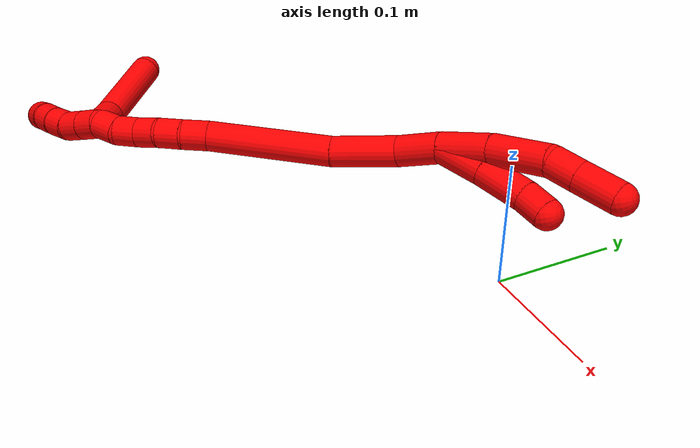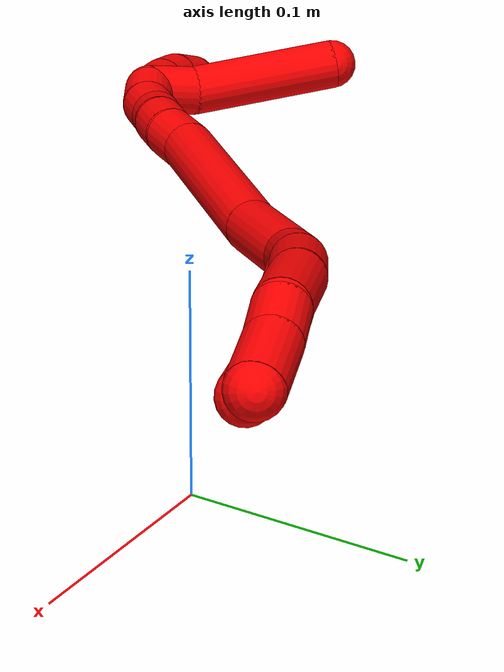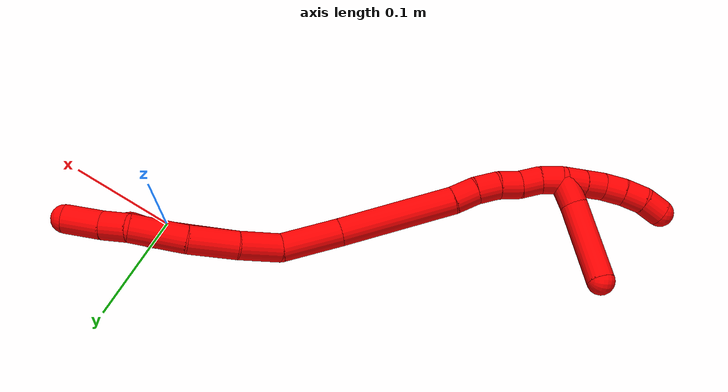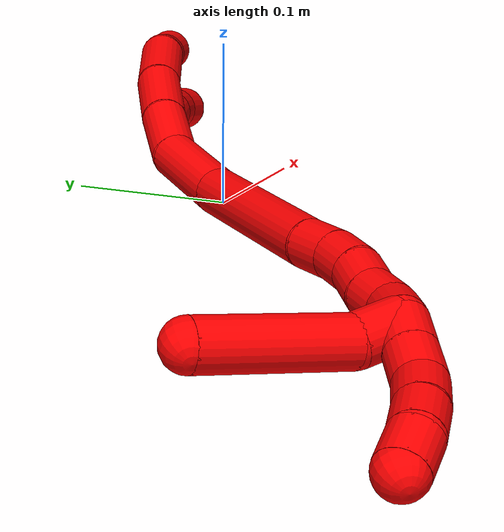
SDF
<sdf version="1.7">
 <world name="default">
  <model name="2">
   <static>0</static>
   <link name="2">
    <collision name="collision-cylinder-e_1_2_8">
     <pose>0.00101 0.002368 -0.021593 -3.03238 0.046485 -0.804257</pose>
     <geometry><cylinder><radius>0.0125</radius><length>0.043491</length></cylinder></geometry>
     <surface>
      <friction><ode><mu>1.16</mu><mu2>1.16</mu2><slip1>0</slip1><slip2>0</slip2></ode></friction>
      <contact><ode><kp>1e+06</kp><kd>1</kd><max_vel>0</max_vel><min_depth>0.001</min_depth></ode></contact>
     </surface>
    </collision>
    <visual name="visual-cylinder-e_1_2_8">
     <pose>0.00101 0.002368 -0.021593 -3.03238 0.046485 -0.804257</pose>
     <geometry><cylinder><radius>0.0125</radius><length>0.043491</length></cylinder></geometry>
     <material><ambient>1 0 0 1</ambient></material>
    </visual>
    <collision name="collision-cylinder-e_2_8_9">
     <pose>0.004024 0.010813 -0.066882 -2.89053 0.081685 -0.626334</pose>
     <geometry><cylinder><radius>0.0125</radius><length>0.04909</length></cylinder></geometry>
     <surface>
      <friction><ode><mu>1.16</mu><mu2>1.16</mu2><slip1>0</slip1><slip2>0</slip2></ode></friction>
      <contact><ode><kp>1e+06</kp><kd>1</kd><max_vel>0</max_vel><min_depth>0.001</min_depth></ode></contact>
     </surface>
    </collision>
    <visual name="visual-cylinder-e_2_8_9">
     <pose>0.004024 0.010813 -0.066882 -2.89053 0.081685 -0.626334</pose>
     <geometry><cylinder><radius>0.0125</radius><length>0.04909</length></cylinder></geometry>
     <material><ambient>1 0 0 1</ambient></material>
    </visual>
    <collision name="collision-cylinder-e_3_9_10">
     <pose>0.010379 0.0213 -0.100523 -2.72425 0.380612 -1.47633</pose>
     <geometry><cylinder><radius>0.0125</radius><length>0.023435</length></cylinder></geometry>
     <surface>
      <friction><ode><mu>1.16</mu><mu2>1.16</mu2><slip1>0</slip1><slip2>0</slip2></ode></friction>
      <contact><ode><kp>1e+06</kp><kd>1</kd><max_vel>0</max_vel><min_depth>0.001</min_depth></ode></contact>
     </surface>
    </collision>
    <visual name="visual-cylinder-e_3_9_10">
     <pose>0.010379 0.0213 -0.100523 -2.72425 0.380612 -1.47633</pose>
     <geometry><cylinder><radius>0.0125</radius><length>0.023435</length></cylinder></geometry>
     <material><ambient>1 0 0 1</ambient></material>
    </visual>
    <collision name="collision-cylinder-e_4_10_6">
     <pose>0.019878 0.032629 -0.12511 -2.70012 0.307663 -1.20932</pose>
     <geometry><cylinder><radius>0.0125</radius><length>0.033983</length></cylinder></geometry>
     <surface>
      <friction><ode><mu>1.16</mu><mu2>1.16</mu2><slip1>0</slip1><slip2>0</slip2></ode></friction>
      <contact><ode><kp>1e+06</kp><kd>1</kd><max_vel>0</max_vel><min_depth>0.001</min_depth></ode></contact>
     </surface>
    </collision>
    <visual name="visual-cylinder-e_4_10_6">
     <pose>0.019878 0.032629 -0.12511 -2.70012 0.307663 -1.20932</pose>
     <geometry><cylinder><radius>0.0125</radius><length>0.033983</length></cylinder></geometry>
     <material><ambient>1 0 0 1</ambient></material>
    </visual>
    <collision name="collision-cylinder-e_1_2_11">
     <pose>0.006408 0.007546 -0.01706 -2.72516 0.330898 -1.33761</pose>
     <geometry><cylinder><radius>0.0125</radius><length>0.03945</length></cylinder></geometry>
     <surface>
      <friction><ode><mu>1.16</mu><mu2>1.16</mu2><slip1>0</slip1><slip2>0</slip2></ode></friction>
      <contact><ode><kp>1e+06</kp><kd>1</kd><max_vel>0</max_vel><min_depth>0.001</min_depth></ode></contact>
     </surface>
    </collision>
    <visual name="visual-cylinder-e_1_2_11">
     <pose>0.006408 0.007546 -0.01706 -2.72516 0.330898 -1.33761</pose>
     <geometry><cylinder><radius>0.0125</radius><length>0.03945</length></cylinder></geometry>
     <material><ambient>1 0 0 1</ambient></material>
    </visual>
    <collision name="collision-cylinder-e_2_11_12">
     <pose>0.019704 0.023106 -0.050192 -2.67899 0.366207 -1.33262</pose>
     <geometry><cylinder><radius>0.0125</radius><length>0.038469</length></cylinder></geometry>
     <surface>
      <friction><ode><mu>1.16</mu><mu2>1.16</mu2><slip1>0</slip1><slip2>0</slip2></ode></friction>
      <contact><ode><kp>1e+06</kp><kd>1</kd><max_vel>0</max_vel><min_depth>0.001</min_depth></ode></contact>
     </surface>
    </collision>
    <visual name="visual-cylinder-e_2_11_12">
     <pose>0.019704 0.023106 -0.050192 -2.67899 0.366207 -1.33262</pose>
     <geometry><cylinder><radius>0.0125</radius><length>0.038469</length></cylinder></geometry>
     <material><ambient>1 0 0 1</ambient></material>
    </visual>
    <collision name="collision-cylinder-e_3_12_5">
     <pose>0.029689 0.037354 -0.074834 -2.51283 0.284378 -0.829435</pose>
     <geometry><cylinder><radius>0.0125</radius><length>0.022082</length></cylinder></geometry>
     <surface>
      <friction><ode><mu>1.16</mu><mu2>1.16</mu2><slip1>0</slip1><slip2>0</slip2></ode></friction>
      <contact><ode><kp>1e+06</kp><kd>1</kd><max_vel>0</max_vel><min_depth>0.001</min_depth></ode></contact>
     </surface>
    </collision>
    <visual name="visual-cylinder-e_3_12_5">
     <pose>0.029689 0.037354 -0.074834 -2.51283 0.284378 -0.829435</pose>
     <geometry><cylinder><radius>0.0125</radius><length>0.022082</length></cylinder></geometry>
     <material><ambient>1 0 0 1</ambient></material>
    </visual>
    <collision name="collision-cylinder-e_1_2_13">
     <pose>-0.000127 1.2e-05 0.018966 -0.000635 -0.006717 2e-06</pose>
     <geometry><cylinder><radius>0.0125</radius><length>0.037932</length></cylinder></geometry>
     <surface>
      <friction><ode><mu>1.16</mu><mu2>1.16</mu2><slip1>0</slip1><slip2>0</slip2></ode></friction>
      <contact><ode><kp>1e+06</kp><kd>1</kd><max_vel>0</max_vel><min_depth>0.001</min_depth></ode></contact>
     </surface>
    </collision>
    <visual name="visual-cylinder-e_1_2_13">
     <pose>-0.000127 1.2e-05 0.018966 -0.000635 -0.006717 2e-06</pose>
     <geometry><cylinder><radius>0.0125</radius><length>0.037932</length></cylinder></geometry>
     <material><ambient>1 0 0 1</ambient></material>
    </visual>
    <collision name="collision-cylinder-e_2_13_14">
     <pose>-0.007989 0.004516 0.063611 -0.173183 -0.288407 0.02521</pose>
     <geometry><cylinder><radius>0.0125</radius><length>0.054385</length></cylinder></geometry>
     <surface>
      <friction><ode><mu>1.16</mu><mu2>1.16</mu2><slip1>0</slip1><slip2>0</slip2></ode></friction>
      <contact><ode><kp>1e+06</kp><kd>1</kd><max_vel>0</max_vel><min_depth>0.001</min_depth></ode></contact>
     </surface>
    </collision>
    <visual name="visual-cylinder-e_2_13_14">
     <pose>-0.007989 0.004516 0.063611 -0.173183 -0.288407 0.02521</pose>
     <geometry><cylinder><radius>0.0125</radius><length>0.054385</length></cylinder></geometry>
     <material><ambient>1 0 0 1</ambient></material>
    </visual>
    <collision name="collision-cylinder-e_3_14_15">
     <pose>-0.036376 0.013899 0.136831 -0.102512 -0.407899 0.02122</pose>
     <geometry><cylinder><radius>0.0125</radius><length>0.104126</length></cylinder></geometry>
     <surface>
      <friction><ode><mu>1.16</mu><mu2>1.16</mu2><slip1>0</slip1><slip2>0</slip2></ode></friction>
      <contact><ode><kp>1e+06</kp><kd>1</kd><max_vel>0</max_vel><min_depth>0.001</min_depth></ode></contact>
     </surface>
    </collision>
    <visual name="visual-cylinder-e_3_14_15">
     <pose>-0.036376 0.013899 0.136831 -0.102512 -0.407899 0.02122</pose>
     <geometry><cylinder><radius>0.0125</radius><length>0.104126</length></cylinder></geometry>
     <material><ambient>1 0 0 1</ambient></material>
    </visual>
    <collision name="collision-cylinder-e_4_15_16">
     <pose>-0.061841 0.021254 0.193999 -0.250612 -0.451029 0.057781</pose>
     <geometry><cylinder><radius>0.0125</radius><length>0.022084</length></cylinder></geometry>
     <surface>
      <friction><ode><mu>1.16</mu><mu2>1.16</mu2><slip1>0</slip1><slip2>0</slip2></ode></friction>
      <contact><ode><kp>1e+06</kp><kd>1</kd><max_vel>0</max_vel><min_depth>0.001</min_depth></ode></contact>
     </surface>
    </collision>
    <visual name="visual-cylinder-e_4_15_16">
     <pose>-0.061841 0.021254 0.193999 -0.250612 -0.451029 0.057781</pose>
     <geometry><cylinder><radius>0.0125</radius><length>0.022084</length></cylinder></geometry>
     <material><ambient>1 0 0 1</ambient></material>
    </visual>
    <collision name="collision-cylinder-e_5_16_17">
     <pose>-0.070161 0.024776 0.21353 -0.106291 -0.338514 0.018181</pose>
     <geometry><cylinder><radius>0.0125</radius><length>0.021117</length></cylinder></geometry>
     <surface>
      <friction><ode><mu>1.16</mu><mu2>1.16</mu2><slip1>0</slip1><slip2>0</slip2></ode></friction>
      <contact><ode><kp>1e+06</kp><kd>1</kd><max_vel>0</max_vel><min_depth>0.001</min_depth></ode></contact>
     </surface>
    </collision>
    <visual name="visual-cylinder-e_5_16_17">
     <pose>-0.070161 0.024776 0.21353 -0.106291 -0.338514 0.018181</pose>
     <geometry><cylinder><radius>0.0125</radius><length>0.021117</length></cylinder></geometry>
     <material><ambient>1 0 0 1</ambient></material>
    </visual>
    <collision name="collision-cylinder-e_6_17_18">
     <pose>-0.075172 0.025825 0.23345 0.000675 -0.149146 -5e-05</pose>
     <geometry><cylinder><radius>0.0125</radius><length>0.020259</length></cylinder></geometry>
     <surface>
      <friction><ode><mu>1.16</mu><mu2>1.16</mu2><slip1>0</slip1><slip2>0</slip2></ode></friction>
      <contact><ode><kp>1e+06</kp><kd>1</kd><max_vel>0</max_vel><min_depth>0.001</min_depth></ode></contact>
     </surface>
    </collision>
    <visual name="visual-cylinder-e_6_17_18">
     <pose>-0.075172 0.025825 0.23345 0.000675 -0.149146 -5e-05</pose>
     <geometry><cylinder><radius>0.0125</radius><length>0.020259</length></cylinder></geometry>
     <material><ambient>1 0 0 1</ambient></material>
    </visual>
    <collision name="collision-cylinder-e_7_18_19">
     <pose>-0.080008 0.026695 0.25289 -0.092751 -0.338342 0.015853</pose>
     <geometry><cylinder><radius>0.0125</radius><length>0.020064</length></cylinder></geometry>
     <surface>
      <friction><ode><mu>1.16</mu><mu2>1.16</mu2><slip1>0</slip1><slip2>0</slip2></ode></friction>
      <contact><ode><kp>1e+06</kp><kd>1</kd><max_vel>0</max_vel><min_depth>0.001</min_depth></ode></contact>
     </surface>
    </collision>
    <visual name="visual-cylinder-e_7_18_19">
     <pose>-0.080008 0.026695 0.25289 -0.092751 -0.338342 0.015853</pose>
     <geometry><cylinder><radius>0.0125</radius><length>0.020064</length></cylinder></geometry>
     <material><ambient>1 0 0 1</ambient></material>
    </visual>
    <collision name="collision-cylinder-e_8_19_1">
     <pose>-0.08655 0.025398 0.271547 0.231155 -0.326465 -0.038237</pose>
     <geometry><cylinder><radius>0.0125</radius><length>0.020032</length></cylinder></geometry>
     <surface>
      <friction><ode><mu>1.16</mu><mu2>1.16</mu2><slip1>0</slip1><slip2>0</slip2></ode></friction>
      <contact><ode><kp>1e+06</kp><kd>1</kd><max_vel>0</max_vel><min_depth>0.001</min_depth></ode></contact>
     </surface>
    </collision>
    <visual name="visual-cylinder-e_8_19_1">
     <pose>-0.08655 0.025398 0.271547 0.231155 -0.326465 -0.038237</pose>
     <geometry><cylinder><radius>0.0125</radius><length>0.020032</length></cylinder></geometry>
     <material><ambient>1 0 0 1</ambient></material>
    </visual>
    <collision name="collision-cylinder-e_1_1_20">
     <pose>-0.089502 0.022633 0.290761 0.059261 0.025934 0.000769</pose>
     <geometry><cylinder><radius>0.0125</radius><length>0.02</length></cylinder></geometry>
     <surface>
      <friction><ode><mu>1.16</mu><mu2>1.16</mu2><slip1>0</slip1><slip2>0</slip2></ode></friction>
      <contact><ode><kp>1e+06</kp><kd>1</kd><max_vel>0</max_vel><min_depth>0.001</min_depth></ode></contact>
     </surface>
    </collision>
    <visual name="visual-cylinder-e_1_1_20">
     <pose>-0.089502 0.022633 0.290761 0.059261 0.025934 0.000769</pose>
     <geometry><cylinder><radius>0.0125</radius><length>0.02</length></cylinder></geometry>
     <material><ambient>1 0 0 1</ambient></material>
    </visual>
    <collision name="collision-cylinder-e_2_20_21">
     <pose>-0.089088 0.021424 0.31072 0.061691 0.015472 0.000477</pose>
     <geometry><cylinder><radius>0.0125</radius><length>0.02</length></cylinder></geometry>
     <surface>
      <friction><ode><mu>1.16</mu><mu2>1.16</mu2><slip1>0</slip1><slip2>0</slip2></ode></friction>
      <contact><ode><kp>1e+06</kp><kd>1</kd><max_vel>0</max_vel><min_depth>0.001</min_depth></ode></contact>
     </surface>
    </collision>
    <visual name="visual-cylinder-e_2_20_21">
     <pose>-0.089088 0.021424 0.31072 0.061691 0.015472 0.000477</pose>
     <geometry><cylinder><radius>0.0125</radius><length>0.02</length></cylinder></geometry>
     <material><ambient>1 0 0 1</ambient></material>
    </visual>
    <collision name="collision-cylinder-e_3_21_22">
     <pose>-0.089709 0.017555 0.330124 0.332384 -0.077578 -0.013019</pose>
     <geometry><cylinder><radius>0.0125</radius><length>0.02</length></cylinder></geometry>
     <surface>
      <friction><ode><mu>1.16</mu><mu2>1.16</mu2><slip1>0</slip1><slip2>0</slip2></ode></friction>
      <contact><ode><kp>1e+06</kp><kd>1</kd><max_vel>0</max_vel><min_depth>0.001</min_depth></ode></contact>
     </surface>
    </collision>
    <visual name="visual-cylinder-e_3_21_22">
     <pose>-0.089709 0.017555 0.330124 0.332384 -0.077578 -0.013019</pose>
     <geometry><cylinder><radius>0.0125</radius><length>0.02</length></cylinder></geometry>
     <material><ambient>1 0 0 1</ambient></material>
    </visual>
    <collision name="collision-cylinder-e_4_22_23">
     <pose>-0.090283 0.010263 0.348694 0.415794 0.020065 0.004233</pose>
     <geometry><cylinder><radius>0.0125</radius><length>0.02</length></cylinder></geometry>
     <surface>
      <friction><ode><mu>1.16</mu><mu2>1.16</mu2><slip1>0</slip1><slip2>0</slip2></ode></friction>
      <contact><ode><kp>1e+06</kp><kd>1</kd><max_vel>0</max_vel><min_depth>0.001</min_depth></ode></contact>
     </surface>
    </collision>
    <visual name="visual-cylinder-e_4_22_23">
     <pose>-0.090283 0.010263 0.348694 0.415794 0.020065 0.004233</pose>
     <geometry><cylinder><radius>0.0125</radius><length>0.02</length></cylinder></geometry>
     <material><ambient>1 0 0 1</ambient></material>
    </visual>
    <collision name="collision-cylinder-e_5_23_4">
     <pose>-0.087504 0.00175 0.366403 0.481559 0.260805 0.064382</pose>
     <geometry><cylinder><radius>0.0125</radius><length>0.02</length></cylinder></geometry>
     <surface>
      <friction><ode><mu>1.16</mu><mu2>1.16</mu2><slip1>0</slip1><slip2>0</slip2></ode></friction>
      <contact><ode><kp>1e+06</kp><kd>1</kd><max_vel>0</max_vel><min_depth>0.001</min_depth></ode></contact>
     </surface>
    </collision>
    <visual name="visual-cylinder-e_5_23_4">
     <pose>-0.087504 0.00175 0.366403 0.481559 0.260805 0.064382</pose>
     <geometry><cylinder><radius>0.0125</radius><length>0.02</length></cylinder></geometry>
     <material><ambient>1 0 0 1</ambient></material>
    </visual>
    <collision name="collision-cylinder-e_1_1_24">
     <pose>-0.084822 0.012834 0.285329 1.15831 0.410718 0.270768</pose>
     <geometry><cylinder><radius>0.0125</radius><length>0.024742</length></cylinder></geometry>
     <surface>
      <friction><ode><mu>1.16</mu><mu2>1.16</mu2><slip1>0</slip1><slip2>0</slip2></ode></friction>
      <contact><ode><kp>1e+06</kp><kd>1</kd><max_vel>0</max_vel><min_depth>0.001</min_depth></ode></contact>
     </surface>
    </collision>
    <visual name="visual-cylinder-e_1_1_24">
     <pose>-0.084822 0.012834 0.285329 1.15831 0.410718 0.270768</pose>
     <geometry><cylinder><radius>0.0125</radius><length>0.024742</length></cylinder></geometry>
     <material><ambient>1 0 0 1</ambient></material>
    </visual>
    <collision name="collision-cylinder-e_2_24_3">
     <pose>-0.071575 -0.033886 0.295083 1.42843 0.222615 0.19318</pose>
     <geometry><cylinder><radius>0.0125</radius><length>0.075258</length></cylinder></geometry>
     <surface>
      <friction><ode><mu>1.16</mu><mu2>1.16</mu2><slip1>0</slip1><slip2>0</slip2></ode></friction>
      <contact><ode><kp>1e+06</kp><kd>1</kd><max_vel>0</max_vel><min_depth>0.001</min_depth></ode></contact>
     </surface>
    </collision>
    <visual name="visual-cylinder-e_2_24_3">
     <pose>-0.071575 -0.033886 0.295083 1.42843 0.222615 0.19318</pose>
     <geometry><cylinder><radius>0.0125</radius><length>0.075258</length></cylinder></geometry>
     <material><ambient>1 0 0 1</ambient></material>
    </visual>
    <collision name="collision-sphere-3">
     <pose>-0.063267 -0.070215 0.30029 0 -0 0</pose>
     <geometry><sphere><radius>0.0125</radius></sphere></geometry>
     <surface>
      <friction><ode><mu>1.16</mu><mu2>1.16</mu2><slip1>0</slip1><slip2>0</slip2></ode></friction>
      <contact><ode><kp>1e+06</kp><kd>1</kd><max_vel>0</max_vel><min_depth>0.001</min_depth></ode></contact>
     </surface>
    </collision>
    <visual name="visual-sphere-3">
     <pose>-0.063267 -0.070215 0.30029 0 -0 0</pose>
     <geometry><sphere><radius>0.0125</radius></sphere></geometry>
     <material><ambient>1 0 0 1</ambient></material>
    </visual>
    <collision name="collision-sphere-24">
     <pose>-0.079883 0.002443 0.289876 0 -0 0</pose>
     <geometry><sphere><radius>0.0125</radius></sphere></geometry>
     <surface>
      <friction><ode><mu>1.16</mu><mu2>1.16</mu2><slip1>0</slip1><slip2>0</slip2></ode></friction>
      <contact><ode><kp>1e+06</kp><kd>1</kd><max_vel>0</max_vel><min_depth>0.001</min_depth></ode></contact>
     </surface>
    </collision>
    <visual name="visual-sphere-24">
     <pose>-0.079883 0.002443 0.289876 0 -0 0</pose>
     <geometry><sphere><radius>0.0125</radius></sphere></geometry>
     <material><ambient>1 0 0 1</ambient></material>
    </visual>
    <collision name="collision-sphere-4">
     <pose>-0.084925 -0.002725 0.374966 0 -0 0</pose>
     <geometry><sphere><radius>0.0125</radius></sphere></geometry>
     <surface>
      <friction><ode><mu>1.16</mu><mu2>1.16</mu2><slip1>0</slip1><slip2>0</slip2></ode></friction>
      <contact><ode><kp>1e+06</kp><kd>1</kd><max_vel>0</max_vel><min_depth>0.001</min_depth></ode></contact>
     </surface>
    </collision>
    <visual name="visual-sphere-4">
     <pose>-0.084925 -0.002725 0.374966 0 -0 0</pose>
     <geometry><sphere><radius>0.0125</radius></sphere></geometry>
     <material><ambient>1 0 0 1</ambient></material>
    </visual>
    <collision name="collision-sphere-23">
     <pose>-0.090082 0.006225 0.35784 0 -0 0</pose>
     <geometry><sphere><radius>0.0125</radius></sphere></geometry>
     <surface>
      <friction><ode><mu>1.16</mu><mu2>1.16</mu2><slip1>0</slip1><slip2>0</slip2></ode></friction>
      <contact><ode><kp>1e+06</kp><kd>1</kd><max_vel>0</max_vel><min_depth>0.001</min_depth></ode></contact>
     </surface>
    </collision>
    <visual name="visual-sphere-23">
     <pose>-0.090082 0.006225 0.35784 0 -0 0</pose>
     <geometry><sphere><radius>0.0125</radius></sphere></geometry>
     <material><ambient>1 0 0 1</ambient></material>
    </visual>
    <collision name="collision-sphere-22">
     <pose>-0.090484 0.014301 0.339548 0 -0 0</pose>
     <geometry><sphere><radius>0.0125</radius></sphere></geometry>
     <surface>
      <friction><ode><mu>1.16</mu><mu2>1.16</mu2><slip1>0</slip1><slip2>0</slip2></ode></friction>
      <contact><ode><kp>1e+06</kp><kd>1</kd><max_vel>0</max_vel><min_depth>0.001</min_depth></ode></contact>
     </surface>
    </collision>
    <visual name="visual-sphere-22">
     <pose>-0.090484 0.014301 0.339548 0 -0 0</pose>
     <geometry><sphere><radius>0.0125</radius></sphere></geometry>
     <material><ambient>1 0 0 1</ambient></material>
    </visual>
    <collision name="collision-sphere-21">
     <pose>-0.088934 0.020808 0.320699 0 -0 0</pose>
     <geometry><sphere><radius>0.0125</radius></sphere></geometry>
     <surface>
      <friction><ode><mu>1.16</mu><mu2>1.16</mu2><slip1>0</slip1><slip2>0</slip2></ode></friction>
      <contact><ode><kp>1e+06</kp><kd>1</kd><max_vel>0</max_vel><min_depth>0.001</min_depth></ode></contact>
     </surface>
    </collision>
    <visual name="visual-sphere-21">
     <pose>-0.088934 0.020808 0.320699 0 -0 0</pose>
     <geometry><sphere><radius>0.0125</radius></sphere></geometry>
     <material><ambient>1 0 0 1</ambient></material>
    </visual>
    <collision name="collision-sphere-20">
     <pose>-0.089243 0.022041 0.30074 0 -0 0</pose>
     <geometry><sphere><radius>0.0125</radius></sphere></geometry>
     <surface>
      <friction><ode><mu>1.16</mu><mu2>1.16</mu2><slip1>0</slip1><slip2>0</slip2></ode></friction>
      <contact><ode><kp>1e+06</kp><kd>1</kd><max_vel>0</max_vel><min_depth>0.001</min_depth></ode></contact>
     </surface>
    </collision>
    <visual name="visual-sphere-20">
     <pose>-0.089243 0.022041 0.30074 0 -0 0</pose>
     <geometry><sphere><radius>0.0125</radius></sphere></geometry>
     <material><ambient>1 0 0 1</ambient></material>
    </visual>
    <collision name="collision-sphere-11">
     <pose>0.012817 0.015092 -0.034121 0 -0 0</pose>
     <geometry><sphere><radius>0.0125</radius></sphere></geometry>
     <surface>
      <friction><ode><mu>1.16</mu><mu2>1.16</mu2><slip1>0</slip1><slip2>0</slip2></ode></friction>
      <contact><ode><kp>1e+06</kp><kd>1</kd><max_vel>0</max_vel><min_depth>0.001</min_depth></ode></contact>
     </surface>
    </collision>
    <visual name="visual-sphere-11">
     <pose>0.012817 0.015092 -0.034121 0 -0 0</pose>
     <geometry><sphere><radius>0.0125</radius></sphere></geometry>
     <material><ambient>1 0 0 1</ambient></material>
    </visual>
    <collision name="collision-sphere-6">
     <pose>0.025024 0.039548 -0.139751 0 -0 0</pose>
     <geometry><sphere><radius>0.0125</radius></sphere></geometry>
     <surface>
      <friction><ode><mu>1.16</mu><mu2>1.16</mu2><slip1>0</slip1><slip2>0</slip2></ode></friction>
      <contact><ode><kp>1e+06</kp><kd>1</kd><max_vel>0</max_vel><min_depth>0.001</min_depth></ode></contact>
     </surface>
    </collision>
    <visual name="visual-sphere-6">
     <pose>0.025024 0.039548 -0.139751 0 -0 0</pose>
     <geometry><sphere><radius>0.0125</radius></sphere></geometry>
     <material><ambient>1 0 0 1</ambient></material>
    </visual>
    <collision name="collision-sphere-10">
     <pose>0.014732 0.025709 -0.110469 0 -0 0</pose>
     <geometry><sphere><radius>0.0125</radius></sphere></geometry>
     <surface>
      <friction><ode><mu>1.16</mu><mu2>1.16</mu2><slip1>0</slip1><slip2>0</slip2></ode></friction>
      <contact><ode><kp>1e+06</kp><kd>1</kd><max_vel>0</max_vel><min_depth>0.001</min_depth></ode></contact>
     </surface>
    </collision>
    <visual name="visual-sphere-10">
     <pose>0.014732 0.025709 -0.110469 0 -0 0</pose>
     <geometry><sphere><radius>0.0125</radius></sphere></geometry>
     <material><ambient>1 0 0 1</ambient></material>
    </visual>
    <collision name="collision-sphere-9">
     <pose>0.006026 0.01689 -0.090578 0 -0 0</pose>
     <geometry><sphere><radius>0.0125</radius></sphere></geometry>
     <surface>
      <friction><ode><mu>1.16</mu><mu2>1.16</mu2><slip1>0</slip1><slip2>0</slip2></ode></friction>
      <contact><ode><kp>1e+06</kp><kd>1</kd><max_vel>0</max_vel><min_depth>0.001</min_depth></ode></contact>
     </surface>
    </collision>
    <visual name="visual-sphere-9">
     <pose>0.006026 0.01689 -0.090578 0 -0 0</pose>
     <geometry><sphere><radius>0.0125</radius></sphere></geometry>
     <material><ambient>1 0 0 1</ambient></material>
    </visual>
    <collision name="collision-sphere-2">
     <geometry><sphere><radius>0.0125</radius></sphere></geometry>
     <surface>
      <friction><ode><mu>1.16</mu><mu2>1.16</mu2><slip1>0</slip1><slip2>0</slip2></ode></friction>
      <contact><ode><kp>1e+06</kp><kd>1</kd><max_vel>0</max_vel><min_depth>0.001</min_depth></ode></contact>
     </surface>
    </collision>
    <visual name="visual-sphere-2">
     <geometry><sphere><radius>0.0125</radius></sphere></geometry>
     <material><ambient>1 0 0 1</ambient></material>
    </visual>
    <collision name="collision-sphere-19">
     <pose>-0.083338 0.027572 0.262313 0 -0 0</pose>
     <geometry><sphere><radius>0.0125</radius></sphere></geometry>
     <surface>
      <friction><ode><mu>1.16</mu><mu2>1.16</mu2><slip1>0</slip1><slip2>0</slip2></ode></friction>
      <contact><ode><kp>1e+06</kp><kd>1</kd><max_vel>0</max_vel><min_depth>0.001</min_depth></ode></contact>
     </surface>
    </collision>
    <visual name="visual-sphere-19">
     <pose>-0.083338 0.027572 0.262313 0 -0 0</pose>
     <geometry><sphere><radius>0.0125</radius></sphere></geometry>
     <material><ambient>1 0 0 1</ambient></material>
    </visual>
    <collision name="collision-sphere-8">
     <pose>0.002021 0.004735 -0.043185 0 -0 0</pose>
     <geometry><sphere><radius>0.0125</radius></sphere></geometry>
     <surface>
      <friction><ode><mu>1.16</mu><mu2>1.16</mu2><slip1>0</slip1><slip2>0</slip2></ode></friction>
      <contact><ode><kp>1e+06</kp><kd>1</kd><max_vel>0</max_vel><min_depth>0.001</min_depth></ode></contact>
     </surface>
    </collision>
    <visual name="visual-sphere-8">
     <pose>0.002021 0.004735 -0.043185 0 -0 0</pose>
     <geometry><sphere><radius>0.0125</radius></sphere></geometry>
     <material><ambient>1 0 0 1</ambient></material>
    </visual>
    <collision name="collision-sphere-12">
     <pose>0.026592 0.031121 -0.066264 0 -0 0</pose>
     <geometry><sphere><radius>0.0125</radius></sphere></geometry>
     <surface>
      <friction><ode><mu>1.16</mu><mu2>1.16</mu2><slip1>0</slip1><slip2>0</slip2></ode></friction>
      <contact><ode><kp>1e+06</kp><kd>1</kd><max_vel>0</max_vel><min_depth>0.001</min_depth></ode></contact>
     </surface>
    </collision>
    <visual name="visual-sphere-12">
     <pose>0.026592 0.031121 -0.066264 0 -0 0</pose>
     <geometry><sphere><radius>0.0125</radius></sphere></geometry>
     <material><ambient>1 0 0 1</ambient></material>
    </visual>
    <collision name="collision-sphere-5">
     <pose>0.032787 0.043587 -0.083405 0 -0 0</pose>
     <geometry><sphere><radius>0.0125</radius></sphere></geometry>
     <surface>
      <friction><ode><mu>1.16</mu><mu2>1.16</mu2><slip1>0</slip1><slip2>0</slip2></ode></friction>
      <contact><ode><kp>1e+06</kp><kd>1</kd><max_vel>0</max_vel><min_depth>0.001</min_depth></ode></contact>
     </surface>
    </collision>
    <visual name="visual-sphere-5">
     <pose>0.032787 0.043587 -0.083405 0 -0 0</pose>
     <geometry><sphere><radius>0.0125</radius></sphere></geometry>
     <material><ambient>1 0 0 1</ambient></material>
    </visual>
    <collision name="collision-sphere-13">
     <pose>-0.000255 2.4e-05 0.037931 0 -0 0</pose>
     <geometry><sphere><radius>0.0125</radius></sphere></geometry>
     <surface>
      <friction><ode><mu>1.16</mu><mu2>1.16</mu2><slip1>0</slip1><slip2>0</slip2></ode></friction>
      <contact><ode><kp>1e+06</kp><kd>1</kd><max_vel>0</max_vel><min_depth>0.001</min_depth></ode></contact>
     </surface>
    </collision>
    <visual name="visual-sphere-13">
     <pose>-0.000255 2.4e-05 0.037931 0 -0 0</pose>
     <geometry><sphere><radius>0.0125</radius></sphere></geometry>
     <material><ambient>1 0 0 1</ambient></material>
    </visual>
    <collision name="collision-sphere-14">
     <pose>-0.015723 0.009009 0.08929 0 -0 0</pose>
     <geometry><sphere><radius>0.0125</radius></sphere></geometry>
     <surface>
      <friction><ode><mu>1.16</mu><mu2>1.16</mu2><slip1>0</slip1><slip2>0</slip2></ode></friction>
      <contact><ode><kp>1e+06</kp><kd>1</kd><max_vel>0</max_vel><min_depth>0.001</min_depth></ode></contact>
     </surface>
    </collision>
    <visual name="visual-sphere-14">
     <pose>-0.015723 0.009009 0.08929 0 -0 0</pose>
     <geometry><sphere><radius>0.0125</radius></sphere></geometry>
     <material><ambient>1 0 0 1</ambient></material>
    </visual>
    <collision name="collision-sphere-15">
     <pose>-0.057028 0.01879 0.184372 0 -0 0</pose>
     <geometry><sphere><radius>0.0125</radius></sphere></geometry>
     <surface>
      <friction><ode><mu>1.16</mu><mu2>1.16</mu2><slip1>0</slip1><slip2>0</slip2></ode></friction>
      <contact><ode><kp>1e+06</kp><kd>1</kd><max_vel>0</max_vel><min_depth>0.001</min_depth></ode></contact>
     </surface>
    </collision>
    <visual name="visual-sphere-15">
     <pose>-0.057028 0.01879 0.184372 0 -0 0</pose>
     <geometry><sphere><radius>0.0125</radius></sphere></geometry>
     <material><ambient>1 0 0 1</ambient></material>
    </visual>
    <collision name="collision-sphere-16">
     <pose>-0.066655 0.023719 0.203627 0 -0 0</pose>
     <geometry><sphere><radius>0.0125</radius></sphere></geometry>
     <surface>
      <friction><ode><mu>1.16</mu><mu2>1.16</mu2><slip1>0</slip1><slip2>0</slip2></ode></friction>
      <contact><ode><kp>1e+06</kp><kd>1</kd><max_vel>0</max_vel><min_depth>0.001</min_depth></ode></contact>
     </surface>
    </collision>
    <visual name="visual-sphere-16">
     <pose>-0.066655 0.023719 0.203627 0 -0 0</pose>
     <geometry><sphere><radius>0.0125</radius></sphere></geometry>
     <material><ambient>1 0 0 1</ambient></material>
    </visual>
    <collision name="collision-sphere-17">
     <pose>-0.073667 0.025832 0.223433 0 -0 0</pose>
     <geometry><sphere><radius>0.0125</radius></sphere></geometry>
     <surface>
      <friction><ode><mu>1.16</mu><mu2>1.16</mu2><slip1>0</slip1><slip2>0</slip2></ode></friction>
      <contact><ode><kp>1e+06</kp><kd>1</kd><max_vel>0</max_vel><min_depth>0.001</min_depth></ode></contact>
     </surface>
    </collision>
    <visual name="visual-sphere-17">
     <pose>-0.073667 0.025832 0.223433 0 -0 0</pose>
     <geometry><sphere><radius>0.0125</radius></sphere></geometry>
     <material><ambient>1 0 0 1</ambient></material>
    </visual>
    <collision name="collision-sphere-18">
     <pose>-0.076678 0.025819 0.243467 0 -0 0</pose>
     <geometry><sphere><radius>0.0125</radius></sphere></geometry>
     <surface>
      <friction><ode><mu>1.16</mu><mu2>1.16</mu2><slip1>0</slip1><slip2>0</slip2></ode></friction>
      <contact><ode><kp>1e+06</kp><kd>1</kd><max_vel>0</max_vel><min_depth>0.001</min_depth></ode></contact>
     </surface>
    </collision>
    <visual name="visual-sphere-18">
     <pose>-0.076678 0.025819 0.243467 0 -0 0</pose>
     <geometry><sphere><radius>0.0125</radius></sphere></geometry>
     <material><ambient>1 0 0 1</ambient></material>
    </visual>
    <collision name="collision-sphere-1">
     <pose>-0.089762 0.023225 0.280782 0 -0 0</pose>
     <geometry><sphere><radius>0.0125</radius></sphere></geometry>
     <surface>
      <friction><ode><mu>1.16</mu><mu2>1.16</mu2><slip1>0</slip1><slip2>0</slip2></ode></friction>
      <contact><ode><kp>1e+06</kp><kd>1</kd><max_vel>0</max_vel><min_depth>0.001</min_depth></ode></contact>
     </surface>
    </collision>
    <visual name="visual-sphere-1">
     <pose>-0.089762 0.023225 0.280782 0 -0 0</pose>
     <geometry><sphere><radius>0.0125</radius></sphere></geometry>
     <material><ambient>1 0 0 1</ambient></material>
    </visual>
    <inertial>
     <pose>-0.034022 0.010329 0.119437 0 -0 0</pose>
     <mass>0.75</mass>
     <inertia>
      <ixx>0.000164</ixx>
      <ixy>0</ixy>
      <ixz>0</ixz>
      <iyy>0.000101</iyy>
      <iyz>0</iyz>
      <izz>5.7e-05</izz>
     </inertia>
    </inertial>
   </link>
   <pose>-0.086092 -0.001299 0.070671 -2.34755 1.04234 1.47676</pose>
  </model>
 </world>
</sdf>
